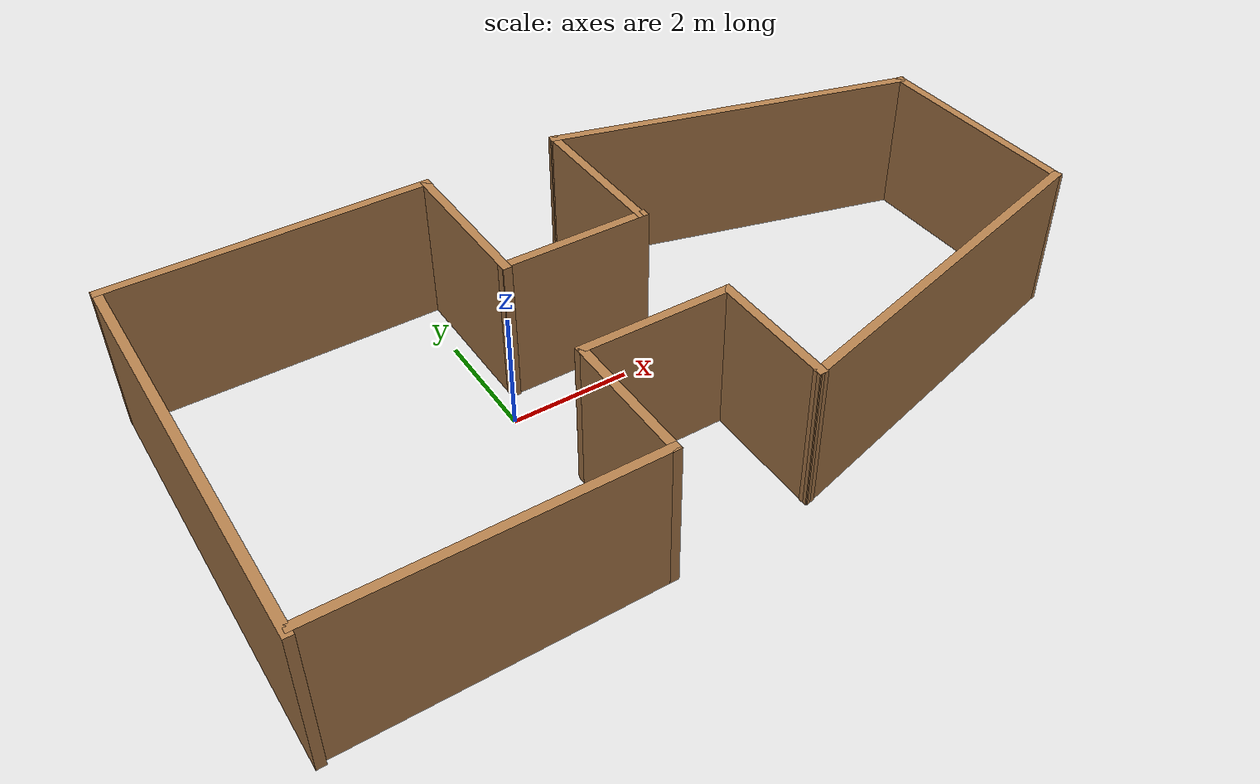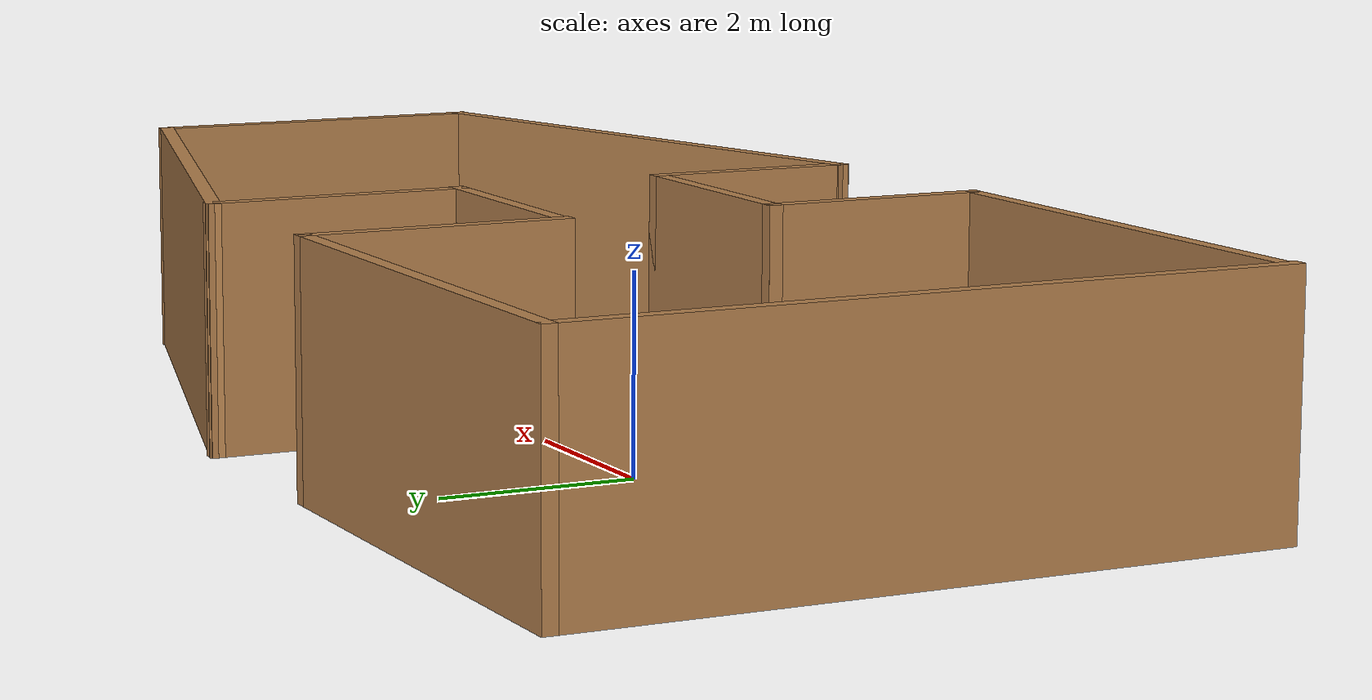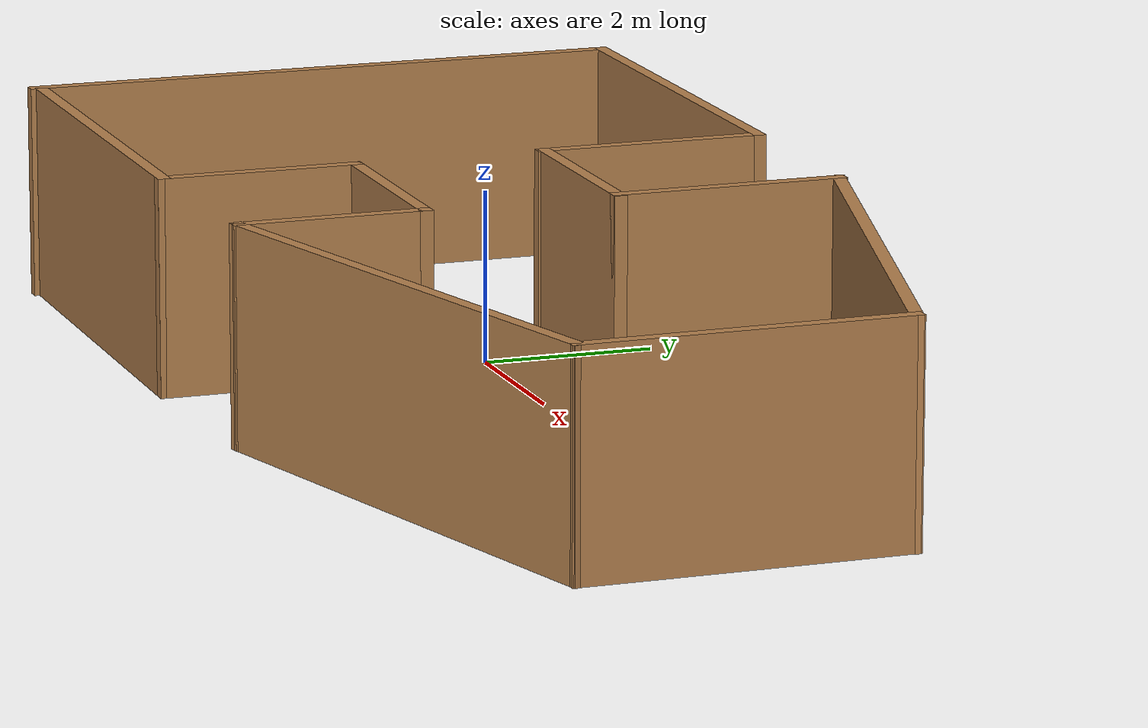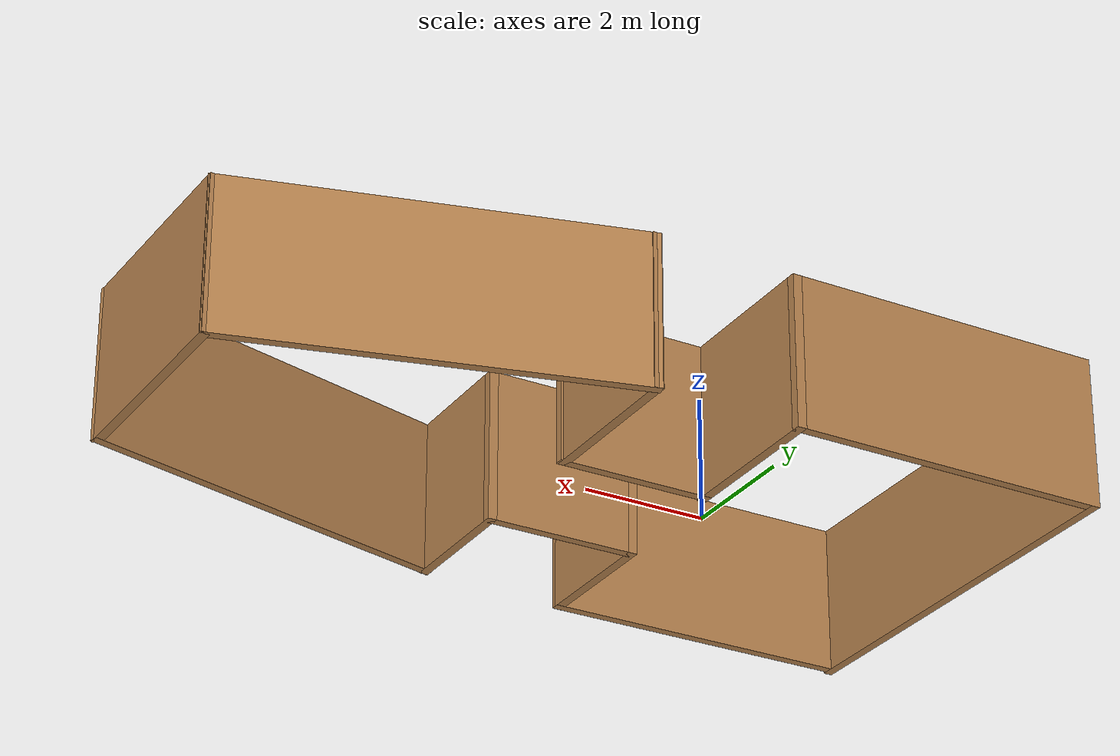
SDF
<?xml version='1.0'?>
<sdf version='1.7'>
  <model name='room'>
    <pose>1.99438 -0.348272 0 0 -0 0</pose>
    <link name='Wall_0'>
      <collision name='Wall_0_Collision'>
        <geometry>
          <box>
            <size>5.25 0.15 2.5</size>
          </box>
        </geometry>
        <pose>0 0 1.25 0 -0 0</pose>
      </collision>
      <visual name='Wall_0_Visual'>
        <pose>0 0 1.25 0 -0 0</pose>
        <geometry>
          <box>
            <size>5.25 0.15 2.5</size>
          </box>
        </geometry>
        <material>
          <script>
            <uri>file://media/materials/scripts/gazebo.material</uri>
            <name>Gazebo/Wood</name>
          </script>
          <ambient>1 1 1 1</ambient>
        </material>
        <meta>
          <layer>0</layer>
        </meta>
      </visual>
      <pose>-4.26638 -3.51023 0 0 -0 0</pose>
    </link>
    <link name='Wall_1'>
      <collision name='Wall_1_Collision'>
        <geometry>
          <box>
            <size>2.38579 0.15 2.5</size>
          </box>
        </geometry>
        <pose>0 0 1.25 0 -0 0</pose>
      </collision>
      <visual name='Wall_1_Visual'>
        <pose>0 0 1.25 0 -0 0</pose>
        <geometry>
          <box>
            <size>2.38579 0.15 2.5</size>
          </box>
        </geometry>
        <material>
          <script>
            <uri>file://media/materials/scripts/gazebo.material</uri>
            <name>Gazebo/Wood</name>
          </script>
          <ambient>1 1 1 1</ambient>
        </material>
        <meta>
          <layer>0</layer>
        </meta>
      </visual>
      <pose>-1.71538 -2.39273 0 0 -0 1.5699</pose>
    </link>
    <link name='Wall_10'>
      <collision name='Wall_10_Collision'>
        <geometry>
          <box>
            <size>5.34538 0.15 2.5</size>
          </box>
        </geometry>
        <pose>0 0 1.25 0 -0 0</pose>
      </collision>
      <visual name='Wall_10_Visual'>
        <pose>0 0 1.25 0 -0 0</pose>
        <geometry>
          <box>
            <size>5.34538 0.15 2.5</size>
          </box>
        </geometry>
        <material>
          <script>
            <uri>file://media/materials/scripts/gazebo.material</uri>
            <name>Gazebo/Wood</name>
          </script>
          <ambient>1 1 1 1</ambient>
        </material>
        <meta>
          <layer>0</layer>
        </meta>
      </visual>
      <pose>-4.28041 3.52827 0 0 -0 3.14159</pose>
    </link>
    <link name='Wall_11'>
      <collision name='Wall_11_Collision'>
        <geometry>
          <box>
            <size>7.25 0.15 2.5</size>
          </box>
        </geometry>
        <pose>0 0 1.25 0 -0 0</pose>
      </collision>
      <visual name='Wall_11_Visual'>
        <pose>0 0 1.25 0 -0 0</pose>
        <geometry>
          <box>
            <size>7.25 0.15 2.5</size>
          </box>
        </geometry>
        <material>
          <script>
            <uri>file://media/materials/scripts/gazebo.material</uri>
            <name>Gazebo/Wood</name>
          </script>
          <ambient>1 1 1 1</ambient>
        </material>
        <meta>
          <layer>0</layer>
        </meta>
      </visual>
      <pose>-6.8781 -0.021728 0 0 -0 -1.5708</pose>
    </link>
    <link name='Wall_2'>
      <collision name='Wall_2_Collision'>
        <geometry>
          <box>
            <size>2.59211 0.15 2.5</size>
          </box>
        </geometry>
        <pose>0 0 1.25 0 -0 0</pose>
      </collision>
      <visual name='Wall_2_Visual'>
        <pose>0 0 1.25 0 -0 0</pose>
        <geometry>
          <box>
            <size>2.59211 0.15 2.5</size>
          </box>
        </geometry>
        <material>
          <script>
            <uri>file://media/materials/scripts/gazebo.material</uri>
            <name>Gazebo/Wood</name>
          </script>
          <ambient>1 1 1 1</ambient>
        </material>
        <meta>
          <layer>0</layer>
        </meta>
      </visual>
      <pose>-0.493384 -1.27523 0 0 -0 0</pose>
    </link>
    <link name='Wall_3'>
      <collision name='Wall_3_Collision'>
        <geometry>
          <box>
            <size>2.25 0.15 2.5</size>
          </box>
        </geometry>
        <pose>0 0 1.25 0 -0 0</pose>
      </collision>
      <visual name='Wall_3_Visual'>
        <pose>0 0 1.25 0 -0 0</pose>
        <geometry>
          <box>
            <size>2.25 0.15 2.5</size>
          </box>
        </geometry>
        <material>
          <script>
            <uri>file://media/materials/scripts/gazebo.material</uri>
            <name>Gazebo/Wood</name>
          </script>
          <ambient>1 1 1 1</ambient>
        </material>
        <meta>
          <layer>0</layer>
        </meta>
      </visual>
      <pose>0.727616 -2.32523 0 0 -0 -1.5708</pose>
    </link>
    <link name='Wall_4'>
      <collision name='Wall_4_Collision'>
        <geometry>
          <box>
            <size>6.5 0.15 2.5</size>
          </box>
        </geometry>
        <pose>0 0 1.25 0 -0 0</pose>
      </collision>
      <visual name='Wall_4_Visual'>
        <pose>0 0 1.25 0 -0 0</pose>
        <geometry>
          <box>
            <size>6.5 0.15 2.5</size>
          </box>
        </geometry>
        <material>
          <script>
            <uri>file://media/materials/scripts/gazebo.material</uri>
            <name>Gazebo/Wood</name>
          </script>
          <ambient>1 1 1 1</ambient>
        </material>
        <meta>
          <layer>0</layer>
        </meta>
      </visual>
      <pose>3.79443 -2.55348 0 0 -0 0.261799</pose>
    </link>
    <link name='Wall_5'>
      <collision name='Wall_5_Collision'>
        <geometry>
          <box>
            <size>3.79322 0.15 2.5</size>
          </box>
        </geometry>
        <pose>0 0 1.25 0 -0 0</pose>
      </collision>
      <visual name='Wall_5_Visual'>
        <pose>0 0 1.25 0 -0 0</pose>
        <geometry>
          <box>
            <size>3.79322 0.15 2.5</size>
          </box>
        </geometry>
        <material>
          <script>
            <uri>file://media/materials/scripts/gazebo.material</uri>
            <name>Gazebo/Wood</name>
          </script>
          <ambient>1 1 1 1</ambient>
        </material>
        <meta>
          <layer>0</layer>
        </meta>
      </visual>
      <pose>6.84637 0.089822 0 0 -0 1.57896</pose>
    </link>
    <link name='Wall_6'>
      <collision name='Wall_6_Collision'>
        <geometry>
          <box>
            <size>6.5 0.15 2.5</size>
          </box>
        </geometry>
        <pose>0 0 1.25 0 -0 0</pose>
      </collision>
      <visual name='Wall_6_Visual'>
        <pose>0 0 1.25 0 -0 0</pose>
        <geometry>
          <box>
            <size>6.5 0.15 2.5</size>
          </box>
        </geometry>
        <material>
          <script>
            <uri>file://media/materials/scripts/gazebo.material</uri>
            <name>Gazebo/Wood</name>
          </script>
          <ambient>1 1 1 1</ambient>
        </material>
        <meta>
          <layer>0</layer>
        </meta>
      </visual>
      <pose>3.76469 2.73312 0 0 -0 2.87979</pose>
    </link>
    <link name='Wall_7'>
      <collision name='Wall_7_Collision'>
        <geometry>
          <box>
            <size>2.75 0.15 2.5</size>
          </box>
        </geometry>
        <pose>0 0 1.25 0 -0 0</pose>
      </collision>
      <visual name='Wall_7_Visual'>
        <pose>0 0 1.25 0 -0 0</pose>
        <geometry>
          <box>
            <size>2.75 0.15 2.5</size>
          </box>
        </geometry>
        <material>
          <script>
            <uri>file://media/materials/scripts/gazebo.material</uri>
            <name>Gazebo/Wood</name>
          </script>
          <ambient>1 1 1 1</ambient>
        </material>
        <meta>
          <layer>0</layer>
        </meta>
      </visual>
      <pose>0.697873 2.25487 0 0 -0 -1.5708</pose>
    </link>
    <link name='Wall_8'>
      <collision name='Wall_8_Collision'>
        <geometry>
          <box>
            <size>2.56118 0.15 2.5</size>
          </box>
        </geometry>
        <pose>0 0 1.25 0 -0 0</pose>
      </collision>
      <visual name='Wall_8_Visual'>
        <pose>0 0 1.25 0 -0 0</pose>
        <geometry>
          <box>
            <size>2.56118 0.15 2.5</size>
          </box>
        </geometry>
        <material>
          <script>
            <uri>file://media/materials/scripts/gazebo.material</uri>
            <name>Gazebo/Wood</name>
          </script>
          <ambient>1 1 1 1</ambient>
        </material>
        <meta>
          <layer>0</layer>
        </meta>
      </visual>
      <pose>-0.477127 0.954872 0 0 -0 3.14159</pose>
    </link>
    <link name='Wall_9'>
      <collision name='Wall_9_Collision'>
        <geometry>
          <box>
            <size>2.75 0.15 2.5</size>
          </box>
        </geometry>
        <pose>0 0 1.25 0 -0 0</pose>
      </collision>
      <visual name='Wall_9_Visual'>
        <pose>0 0 1.25 0 -0 0</pose>
        <geometry>
          <box>
            <size>2.75 0.15 2.5</size>
          </box>
        </geometry>
        <material>
          <script>
            <uri>file://media/materials/scripts/gazebo.material</uri>
            <name>Gazebo/Wood</name>
          </script>
          <ambient>1 1 1 1</ambient>
        </material>
        <meta>
          <layer>0</layer>
        </meta>
      </visual>
      <pose>-1.68272 2.22827 0 0 -0 1.5708</pose>
    </link>
    <static>1</static>
  </model>
</sdf>
